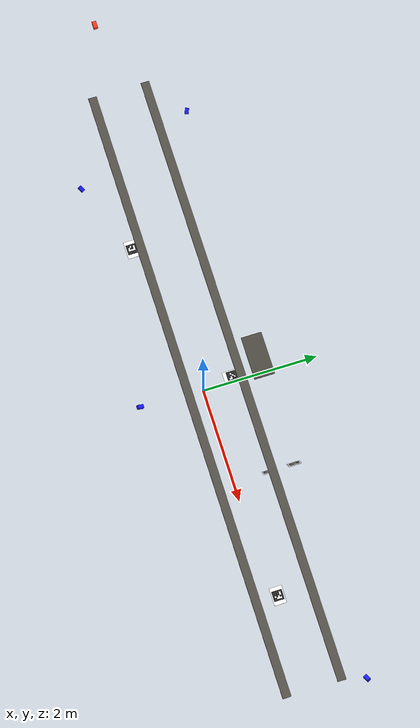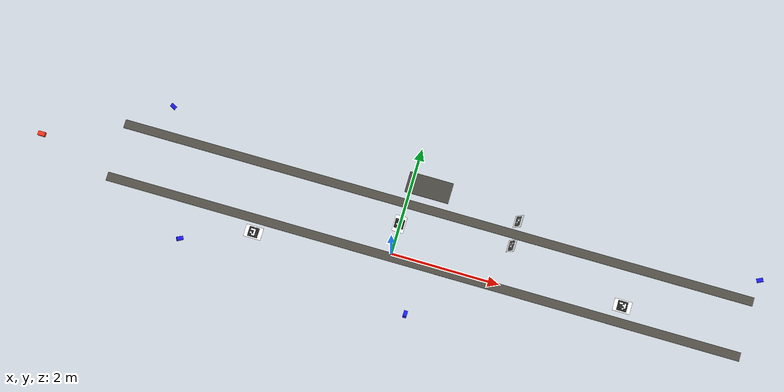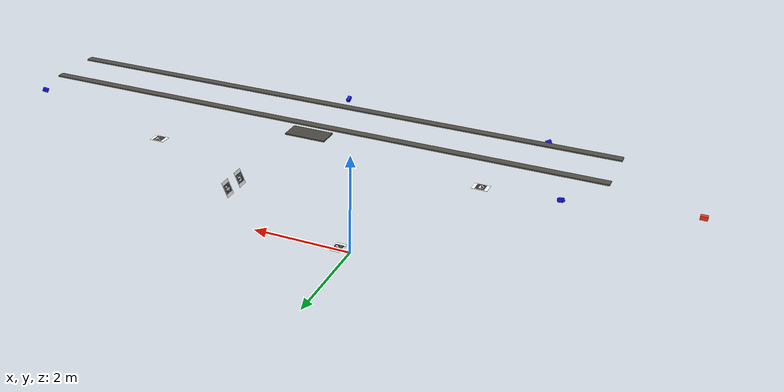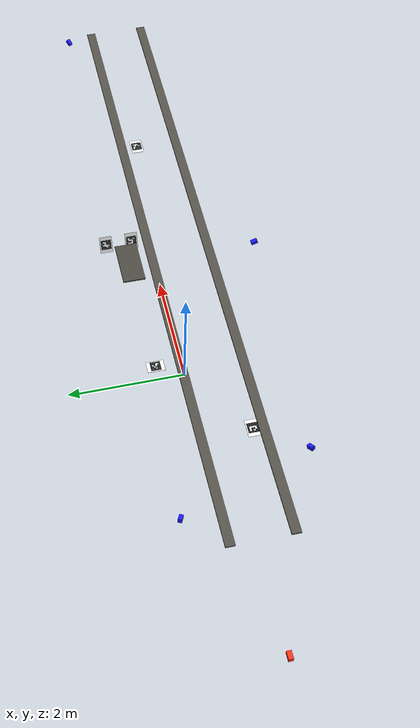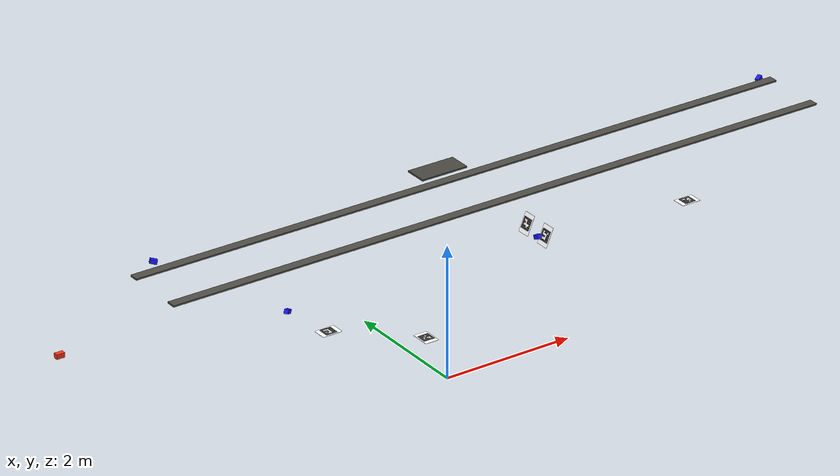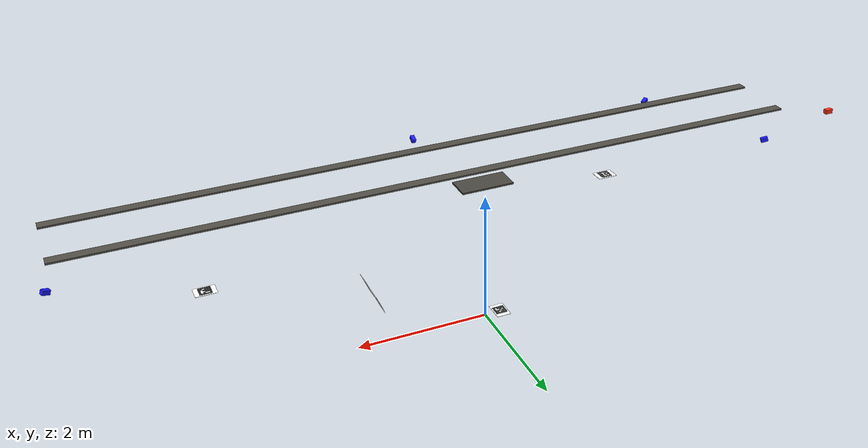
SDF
<sdf version="1.9">
 <world name="bus_real_data_camera_layout">
  <plugin filename="ignition-gazebo-physics-system" name="ignition::gazebo::systems::Physics"/>
  <plugin filename="ignition-gazebo-user-commands-system" name="ignition::gazebo::systems::UserCommands"/>
  <plugin filename="ignition-gazebo-scene-broadcaster-system" name="ignition::gazebo::systems::SceneBroadcaster"/>
  <plugin filename="ignition-gazebo-sensors-system" name="ignition::gazebo::systems::Sensors">
   <render_engine>ogre2</render_engine>
  </plugin>
  <physics name="default_physics" type="ignored">
   <max_step_size>0.01</max_step_size>
   <real_time_factor>1.0</real_time_factor>
  </physics>
  <scene>
   <ambient>0.160000 0.160000 0.170000 1.000000</ambient>
   <background>0.480000 0.520000 0.600000 1.000000</background>
   <shadows>true</shadows>
  </scene>
  <model name="cam_edge_0">
   <static>true</static>
   <pose>0.58780793 -1.23455526 2.48732830 -0.02832886 0.39717862 1.54540010</pose>
   <link name="cam_edge_0_link">
    <visual name="cam_edge_0_visual">
     <geometry><box><size>0.10 0.06 0.06</size></box></geometry>
     <material><ambient>0.1 0.1 1.0 1</ambient><diffuse>0.1 0.1 1.0 1</diffuse></material>
    </visual>
    <sensor name="cam_edge_0_sensor" type="camera">
     <always_on>true</always_on>
     <update_rate>15</update_rate>
     <topic>/bus_real_data/cam_edge_0/image</topic>
     <camera>
      <horizontal_fov>1.2064567910</horizontal_fov>
      <image><width>1280</width><height>720</height><format>R8G8B8</format></image>
      <clip><near>0.05</near><far>100.0</far></clip>
     </camera>
    </sensor>
   </link>
  </model>
  <model name="cam_edge_1">
   <static>true</static>
   <pose>-3.97416732 0.97508650 2.53154268 0.01397153 0.28558128 -0.42471064</pose>
   <link name="cam_edge_1_link">
    <visual name="cam_edge_1_visual">
     <geometry><box><size>0.10 0.06 0.06</size></box></geometry>
     <material><ambient>0.1 0.1 1.0 1</ambient><diffuse>0.1 0.1 1.0 1</diffuse></material>
    </visual>
    <sensor name="cam_edge_1_sensor" type="camera">
     <always_on>true</always_on>
     <update_rate>15</update_rate>
     <topic>/bus_real_data/cam_edge_1/image</topic>
     <camera>
      <horizontal_fov>1.2058954091</horizontal_fov>
      <image><width>1280</width><height>720</height><format>R8G8B8</format></image>
      <clip><near>0.05</near><far>100.0</far></clip>
     </camera>
    </sensor>
   </link>
  </model>
  <model name="cam_edge_3">
   <static>true</static>
   <pose>-3.22735583 -1.06321426 2.45421090 0.03640120 0.33821970 0.53742790</pose>
   <link name="cam_edge_3_link">
    <visual name="cam_edge_3_visual">
     <geometry><box><size>0.10 0.06 0.06</size></box></geometry>
     <material><ambient>0.1 0.1 1.0 1</ambient><diffuse>0.1 0.1 1.0 1</diffuse></material>
    </visual>
    <sensor name="cam_edge_3_sensor" type="camera">
     <always_on>true</always_on>
     <update_rate>15</update_rate>
     <topic>/bus_real_data/cam_edge_3/image</topic>
     <camera>
      <horizontal_fov>1.2156537552</horizontal_fov>
      <image><width>1280</width><height>720</height><format>R8G8B8</format></image>
      <clip><near>0.05</near><far>100.0</far></clip>
     </camera>
    </sensor>
   </link>
  </model>
  <model name="cam_edge_5">
   <static>true</static>
   <pose>5.85885887 0.84841954 2.53876157 0.07529451 0.33545337 -2.70003495</pose>
   <link name="cam_edge_5_link">
    <visual name="cam_edge_5_visual">
     <geometry><box><size>0.10 0.06 0.06</size></box></geometry>
     <material><ambient>0.1 0.1 1.0 1</ambient><diffuse>0.1 0.1 1.0 1</diffuse></material>
    </visual>
    <sensor name="cam_edge_5_sensor" type="camera">
     <always_on>true</always_on>
     <update_rate>15</update_rate>
     <topic>/bus_real_data/cam_edge_5/image</topic>
     <camera>
      <horizontal_fov>1.2083025268</horizontal_fov>
      <image><width>1280</width><height>720</height><format>R8G8B8</format></image>
      <clip><near>0.05</near><far>100.0</far></clip>
     </camera>
    </sensor>
   </link>
  </model>
  <include>
   <uri>model://a4_aruco_marker_001</uri>
   <name>marker_001</name>
   <pose>-2.250000 -0.525000 1.630000 -1.57079633 0.00000000 -1.57079633</pose>
  </include>
  <include>
   <uri>model://a4_aruco_marker_006</uri>
   <name>marker_006</name>
   <pose>1.970000 0.500000 1.370000 -0.40000000 -0.00000000 -1.57079633</pose>
  </include>
  <include>
   <uri>model://a4_aruco_marker_007</uri>
   <name>marker_007</name>
   <pose>1.970000 0.935000 1.370000 -0.40000000 -0.00000000 -1.57079633</pose>
  </include>
  <include>
   <uri>model://a4_aruco_marker_011</uri>
   <name>marker_011</name>
   <pose>4.000000 0.000000 1.530000 -1.57079633 0.00000000 1.57079633</pose>
  </include>
  <include>
   <uri>model://a4_aruco_marker_014</uri>
   <name>aruco_ref_floor_14</name>
   <pose>0.000000 0.500000 0.400000 -1.57079633 0.00000000 0.00000000</pose>
  </include>
  <model name="moving_calib_camera">
   <static>true</static>
   <pose>-6.000000 0.000000 2.200000 0.000000 0.000000 0.000000</pose>
   <link name="moving_calib_camera_link">
    <visual name="moving_calib_camera_visual">
     <geometry><box><size>0.12 0.07 0.07</size></box></geometry>
     <material><ambient>1.0 0.2 0.1 1</ambient><diffuse>1.0 0.2 0.1 1</diffuse></material>
    </visual>
    <sensor name="moving_calib_camera_sensor" type="camera">
     <always_on>true</always_on>
     <update_rate>15</update_rate>
     <topic>/bus_real_data/moving_calib_camera/image</topic>
     <camera>
      <horizontal_fov>1.2060225131</horizontal_fov>
      <image><width>1280</width><height>720</height><format>R8G8B8</format></image>
      <clip><near>0.05</near><far>100.0</far></clip>
     </camera>
    </sensor>
   </link>
  </model>
  <model name="bus_ceiling_led_panels">
   <static>true</static>
   <link name="ceiling_led_panel_link">
    <visual name="ceiling_led_strip_0">
     <pose>0.600000 -0.450000 2.700000 0 0 0</pose>
     <geometry><box><size>10.400000 0.140000 0.025000</size></box></geometry>
     <material>
      <ambient>0.320000 0.310000 0.280000 1.000000</ambient>
      <diffuse>0.320000 0.310000 0.280000 1.000000</diffuse>
      <specular>0.100000 0.100000 0.090000 1.000000</specular>
      <emissive>0.320000 0.310000 0.280000 1.000000</emissive>
     </material>
    </visual>
    <visual name="ceiling_led_strip_1">
     <pose>0.600000 0.450000 2.700000 0 0 0</pose>
     <geometry><box><size>10.400000 0.140000 0.025000</size></box></geometry>
     <material>
      <ambient>0.320000 0.310000 0.280000 1.000000</ambient>
      <diffuse>0.320000 0.310000 0.280000 1.000000</diffuse>
      <specular>0.100000 0.100000 0.090000 1.000000</specular>
      <emissive>0.320000 0.310000 0.280000 1.000000</emissive>
     </material>
    </visual>
    <visual name="door_ceiling_led_panel">
     <pose>0.400000 0.800000 2.700000 0 0 0</pose>
     <geometry><box><size>0.720000 0.340000 0.025000</size></box></geometry>
     <material>
      <ambient>0.288000 0.279000 0.252000 1.000000</ambient>
      <diffuse>0.288000 0.279000 0.252000 1.000000</diffuse>
      <specular>0.100000 0.100000 0.090000 1.000000</specular>
      <emissive>0.288000 0.279000 0.252000 1.000000</emissive>
     </material>
    </visual>
   </link>
  </model>
  <light name="ceiling_strip_point_00" type="point">
   <pose>-4.200000 -0.450000 2.610000 0 0 0</pose>
   <cast_shadows>false</cast_shadows>
   <visualize>false</visualize>
   <diffuse>0.170000 0.165000 0.150000 1.000000</diffuse>
   <specular>0.018000 0.018000 0.016000 1.000000</specular>
   <attenuation>
    <range>4.600000</range>
    <constant>0.880000</constant>
    <linear>0.095000</linear>
    <quadratic>0.022000</quadratic>
   </attenuation>
  </light>
  <light name="ceiling_strip_point_01" type="point">
   <pose>-2.600000 -0.450000 2.610000 0 0 0</pose>
   <cast_shadows>false</cast_shadows>
   <visualize>false</visualize>
   <diffuse>0.170000 0.165000 0.150000 1.000000</diffuse>
   <specular>0.018000 0.018000 0.016000 1.000000</specular>
   <attenuation>
    <range>4.600000</range>
    <constant>0.880000</constant>
    <linear>0.095000</linear>
    <quadratic>0.022000</quadratic>
   </attenuation>
  </light>
  <light name="ceiling_strip_point_02" type="point">
   <pose>-1.000000 -0.450000 2.610000 0 0 0</pose>
   <cast_shadows>false</cast_shadows>
   <visualize>false</visualize>
   <diffuse>0.170000 0.165000 0.150000 1.000000</diffuse>
   <specular>0.018000 0.018000 0.016000 1.000000</specular>
   <attenuation>
    <range>4.600000</range>
    <constant>0.880000</constant>
    <linear>0.095000</linear>
    <quadratic>0.022000</quadratic>
   </attenuation>
  </light>
  <light name="ceiling_strip_point_03" type="point">
   <pose>0.600000 -0.450000 2.610000 0 0 0</pose>
   <cast_shadows>false</cast_shadows>
   <visualize>false</visualize>
   <diffuse>0.170000 0.165000 0.150000 1.000000</diffuse>
   <specular>0.018000 0.018000 0.016000 1.000000</specular>
   <attenuation>
    <range>4.600000</range>
    <constant>0.880000</constant>
    <linear>0.095000</linear>
    <quadratic>0.022000</quadratic>
   </attenuation>
  </light>
  <light name="ceiling_strip_point_04" type="point">
   <pose>2.200000 -0.450000 2.610000 0 0 0</pose>
   <cast_shadows>false</cast_shadows>
   <visualize>false</visualize>
   <diffuse>0.170000 0.165000 0.150000 1.000000</diffuse>
   <specular>0.018000 0.018000 0.016000 1.000000</specular>
   <attenuation>
    <range>4.600000</range>
    <constant>0.880000</constant>
    <linear>0.095000</linear>
    <quadratic>0.022000</quadratic>
   </attenuation>
  </light>
  <light name="ceiling_strip_point_05" type="point">
   <pose>3.800000 -0.450000 2.610000 0 0 0</pose>
   <cast_shadows>false</cast_shadows>
   <visualize>false</visualize>
   <diffuse>0.170000 0.165000 0.150000 1.000000</diffuse>
   <specular>0.018000 0.018000 0.016000 1.000000</specular>
   <attenuation>
    <range>4.600000</range>
    <constant>0.880000</constant>
    <linear>0.095000</linear>
    <quadratic>0.022000</quadratic>
   </attenuation>
  </light>
  <light name="ceiling_strip_point_06" type="point">
   <pose>5.400000 -0.450000 2.610000 0 0 0</pose>
   <cast_shadows>false</cast_shadows>
   <visualize>false</visualize>
   <diffuse>0.170000 0.165000 0.150000 1.000000</diffuse>
   <specular>0.018000 0.018000 0.016000 1.000000</specular>
   <attenuation>
    <range>4.600000</range>
    <constant>0.880000</constant>
    <linear>0.095000</linear>
    <quadratic>0.022000</quadratic>
   </attenuation>
  </light>
  <light name="ceiling_strip_point_07" type="point">
   <pose>-4.200000 0.450000 2.610000 0 0 0</pose>
   <cast_shadows>false</cast_shadows>
   <visualize>false</visualize>
   <diffuse>0.170000 0.165000 0.150000 1.000000</diffuse>
   <specular>0.018000 0.018000 0.016000 1.000000</specular>
   <attenuation>
    <range>4.600000</range>
    <constant>0.880000</constant>
    <linear>0.095000</linear>
    <quadratic>0.022000</quadratic>
   </attenuation>
  </light>
  <light name="ceiling_strip_point_08" type="point">
   <pose>-2.600000 0.450000 2.610000 0 0 0</pose>
   <cast_shadows>false</cast_shadows>
   <visualize>false</visualize>
   <diffuse>0.170000 0.165000 0.150000 1.000000</diffuse>
   <specular>0.018000 0.018000 0.016000 1.000000</specular>
   <attenuation>
    <range>4.600000</range>
    <constant>0.880000</constant>
    <linear>0.095000</linear>
    <quadratic>0.022000</quadratic>
   </attenuation>
  </light>
  <light name="ceiling_strip_point_09" type="point">
   <pose>-1.000000 0.450000 2.610000 0 0 0</pose>
   <cast_shadows>false</cast_shadows>
   <visualize>false</visualize>
   <diffuse>0.170000 0.165000 0.150000 1.000000</diffuse>
   <specular>0.018000 0.018000 0.016000 1.000000</specular>
   <attenuation>
    <range>4.600000</range>
    <constant>0.880000</constant>
    <linear>0.095000</linear>
    <quadratic>0.022000</quadratic>
   </attenuation>
  </light>
  <light name="ceiling_strip_point_10" type="point">
   <pose>0.600000 0.450000 2.610000 0 0 0</pose>
   <cast_shadows>false</cast_shadows>
   <visualize>false</visualize>
   <diffuse>0.170000 0.165000 0.150000 1.000000</diffuse>
   <specular>0.018000 0.018000 0.016000 1.000000</specular>
   <attenuation>
    <range>4.600000</range>
    <constant>0.880000</constant>
    <linear>0.095000</linear>
    <quadratic>0.022000</quadratic>
   </attenuation>
  </light>
  <light name="ceiling_strip_point_11" type="point">
   <pose>2.200000 0.450000 2.610000 0 0 0</pose>
   <cast_shadows>false</cast_shadows>
   <visualize>false</visualize>
   <diffuse>0.170000 0.165000 0.150000 1.000000</diffuse>
   <specular>0.018000 0.018000 0.016000 1.000000</specular>
   <attenuation>
    <range>4.600000</range>
    <constant>0.880000</constant>
    <linear>0.095000</linear>
    <quadratic>0.022000</quadratic>
   </attenuation>
  </light>
  <light name="ceiling_strip_point_12" type="point">
   <pose>3.800000 0.450000 2.610000 0 0 0</pose>
   <cast_shadows>false</cast_shadows>
   <visualize>false</visualize>
   <diffuse>0.170000 0.165000 0.150000 1.000000</diffuse>
   <specular>0.018000 0.018000 0.016000 1.000000</specular>
   <attenuation>
    <range>4.600000</range>
    <constant>0.880000</constant>
    <linear>0.095000</linear>
    <quadratic>0.022000</quadratic>
   </attenuation>
  </light>
  <light name="ceiling_strip_point_13" type="point">
   <pose>5.400000 0.450000 2.610000 0 0 0</pose>
   <cast_shadows>false</cast_shadows>
   <visualize>false</visualize>
   <diffuse>0.170000 0.165000 0.150000 1.000000</diffuse>
   <specular>0.018000 0.018000 0.016000 1.000000</specular>
   <attenuation>
    <range>4.600000</range>
    <constant>0.880000</constant>
    <linear>0.095000</linear>
    <quadratic>0.022000</quadratic>
   </attenuation>
  </light>
  <light name="door_ceiling_point" type="point">
   <pose>0.400000 0.800000 2.580000 0 0 0</pose>
   <cast_shadows>false</cast_shadows>
   <visualize>false</visualize>
   <diffuse>0.122400 0.118800 0.108000 1.000000</diffuse>
   <specular>0.009900 0.009900 0.008800 1.000000</specular>
   <attenuation>
    <range>3.200000</range>
    <constant>0.780000</constant>
    <linear>0.105000</linear>
    <quadratic>0.027000</quadratic>
   </attenuation>
  </light>
 </world>
</sdf>

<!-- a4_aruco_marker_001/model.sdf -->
<sdf version="1.9">
  <model name="a4_aruco_marker_001">
    <static>true</static>
    <link name="board_link">

      <visual name="a4_white_sheet">
        <pose>0 0 0 0 0 0</pose>
        <geometry>
          <box>
            <size>0.210000 0.004 0.297000</size>
          </box>
        </geometry>
        <material>
          <ambient>1 1 1 1</ambient>
          <diffuse>1 1 1 1</diffuse>
        </material>
      </visual>

        <visual name="black_cell_0_0">
          <pose>-0.070833 -0.004000 0.070833 0 0 0</pose>
          <geometry>
            <box>
              <size>0.027767 0.003 0.027767</size>
            </box>
          </geometry>
          <material>
            <ambient>0 0 0 1</ambient>
            <diffuse>0 0 0 1</diffuse>
          </material>
        </visual>

        <visual name="black_cell_0_1">
          <pose>-0.042500 -0.004000 0.070833 0 0 0</pose>
          <geometry>
            <box>
              <size>0.027767 0.003 0.027767</size>
            </box>
          </geometry>
          <material>
            <ambient>0 0 0 1</ambient>
            <diffuse>0 0 0 1</diffuse>
          </material>
        </visual>

        <visual name="black_cell_0_2">
          <pose>-0.014167 -0.004000 0.070833 0 0 0</pose>
          <geometry>
            <box>
              <size>0.027767 0.003 0.027767</size>
            </box>
          </geometry>
          <material>
            <ambient>0 0 0 1</ambient>
            <diffuse>0 0 0 1</diffuse>
          </material>
        </visual>

        <visual name="black_cell_0_3">
          <pose>0.014167 -0.004000 0.070833 0 0 0</pose>
          <geometry>
            <box>
              <size>0.027767 0.003 0.027767</size>
            </box>
          </geometry>
          <material>
            <ambient>0 0 0 1</ambient>
            <diffuse>0 0 0 1</diffuse>
          </material>
        </visual>

        <visual name="black_cell_0_4">
          <pose>0.042500 -0.004000 0.070833 0 0 0</pose>
          <geometry>
            <box>
              <size>0.027767 0.003 0.027767</size>
            </box>
          </geometry>
          <material>
            <ambient>0 0 0 1</ambient>
            <diffuse>0 0 0 1</diffuse>
          </material>
        </visual>

        <visual name="black_cell_0_5">
          <pose>0.070833 -0.004000 0.070833 0 0 0</pose>
          <geometry>
            <box>
              <size>0.027767 0.003 0.027767</size>
            </box>
          </geometry>
          <material>
            <ambient>0 0 0 1</ambient>
            <diffuse>0 0 0 1</diffuse>
          </material>
        </visual>

        <visual name="black_cell_1_0">
          <pose>-0.070833 -0.004000 0.042500 0 0 0</pose>
          <geometry>
            <box>
              <size>0.027767 0.003 0.027767</size>
            </box>
          </geometry>
          <material>
            <ambient>0 0 0 1</ambient>
            <diffuse>0 0 0 1</diffuse>
          </material>
        </visual>

        <visual name="black_cell_1_1">
          <pose>-0.042500 -0.004000 0.042500 0 0 0</pose>
          <geometry>
            <box>
              <size>0.027767 0.003 0.027767</size>
            </box>
          </geometry>
          <material>
            <ambient>0 0 0 1</ambient>
            <diffuse>0 0 0 1</diffuse>
          </material>
        </visual>

        <visual name="black_cell_1_2">
          <pose>-0.014167 -0.004000 0.042500 0 0 0</pose>
          <geometry>
            <box>
              <size>0.027767 0.003 0.027767</size>
            </box>
          </geometry>
          <material>
            <ambient>0 0 0 1</ambient>
            <diffuse>0 0 0 1</diffuse>
          </material>
        </visual>

        <visual name="black_cell_1_3">
          <pose>0.014167 -0.004000 0.042500 0 0 0</pose>
          <geometry>
            <box>
              <size>0.027767 0.003 0.027767</size>
            </box>
          </geometry>
          <material>
            <ambient>0 0 0 1</ambient>
            <diffuse>0 0 0 1</diffuse>
          </material>
        </visual>

        <visual name="black_cell_1_4">
          <pose>0.042500 -0.004000 0.042500 0 0 0</pose>
          <geometry>
            <box>
              <size>0.027767 0.003 0.027767</size>
            </box>
          </geometry>
          <material>
            <ambient>0 0 0 1</ambient>
            <diffuse>0 0 0 1</diffuse>
          </material>
        </visual>

        <visual name="black_cell_1_5">
          <pose>0.070833 -0.004000 0.042500 0 0 0</pose>
          <geometry>
            <box>
              <size>0.027767 0.003 0.027767</size>
            </box>
          </geometry>
          <material>
            <ambient>0 0 0 1</ambient>
            <diffuse>0 0 0 1</diffuse>
          </material>
        </visual>

        <visual name="black_cell_2_0">
          <pose>-0.070833 -0.004000 0.014167 0 0 0</pose>
          <geometry>
            <box>
              <size>0.027767 0.003 0.027767</size>
            </box>
          </geometry>
          <material>
            <ambient>0 0 0 1</ambient>
            <diffuse>0 0 0 1</diffuse>
          </material>
        </visual>

        <visual name="black_cell_2_5">
          <pose>0.070833 -0.004000 0.014167 0 0 0</pose>
          <geometry>
            <box>
              <size>0.027767 0.003 0.027767</size>
            </box>
          </geometry>
          <material>
            <ambient>0 0 0 1</ambient>
            <diffuse>0 0 0 1</diffuse>
          </material>
        </visual>

        <visual name="black_cell_3_0">
          <pose>-0.070833 -0.004000 -0.014167 0 0 0</pose>
          <geometry>
            <box>
              <size>0.027767 0.003 0.027767</size>
            </box>
          </geometry>
          <material>
            <ambient>0 0 0 1</ambient>
            <diffuse>0 0 0 1</diffuse>
          </material>
        </visual>

        <visual name="black_cell_3_2">
          <pose>-0.014167 -0.004000 -0.014167 0 0 0</pose>
          <geometry>
            <box>
              <size>0.027767 0.003 0.027767</size>
            </box>
          </geometry>
          <material>
            <ambient>0 0 0 1</ambient>
            <diffuse>0 0 0 1</diffuse>
          </material>
        </visual>

        <visual name="black_cell_3_3">
          <pose>0.014167 -0.004000 -0.014167 0 0 0</pose>
          <geometry>
            <box>
              <size>0.027767 0.003 0.027767</size>
            </box>
          </geometry>
          <material>
            <ambient>0 0 0 1</ambient>
            <diffuse>0 0 0 1</diffuse>
          </material>
        </visual>

        <visual name="black_cell_3_5">
          <pose>0.070833 -0.004000 -0.014167 0 0 0</pose>
          <geometry>
            <box>
              <size>0.027767 0.003 0.027767</size>
            </box>
          </geometry>
          <material>
            <ambient>0 0 0 1</ambient>
            <diffuse>0 0 0 1</diffuse>
          </material>
        </visual>

        <visual name="black_cell_4_0">
          <pose>-0.070833 -0.004000 -0.042500 0 0 0</pose>
          <geometry>
            <box>
              <size>0.027767 0.003 0.027767</size>
            </box>
          </geometry>
          <material>
            <ambient>0 0 0 1</ambient>
            <diffuse>0 0 0 1</diffuse>
          </material>
        </visual>

        <visual name="black_cell_4_2">
          <pose>-0.014167 -0.004000 -0.042500 0 0 0</pose>
          <geometry>
            <box>
              <size>0.027767 0.003 0.027767</size>
            </box>
          </geometry>
          <material>
            <ambient>0 0 0 1</ambient>
            <diffuse>0 0 0 1</diffuse>
          </material>
        </visual>

        <visual name="black_cell_4_4">
          <pose>0.042500 -0.004000 -0.042500 0 0 0</pose>
          <geometry>
            <box>
              <size>0.027767 0.003 0.027767</size>
            </box>
          </geometry>
          <material>
            <ambient>0 0 0 1</ambient>
            <diffuse>0 0 0 1</diffuse>
          </material>
        </visual>

        <visual name="black_cell_4_5">
          <pose>0.070833 -0.004000 -0.042500 0 0 0</pose>
          <geometry>
            <box>
              <size>0.027767 0.003 0.027767</size>
            </box>
          </geometry>
          <material>
            <ambient>0 0 0 1</ambient>
            <diffuse>0 0 0 1</diffuse>
          </material>
        </visual>

        <visual name="black_cell_5_0">
          <pose>-0.070833 -0.004000 -0.070833 0 0 0</pose>
          <geometry>
            <box>
              <size>0.027767 0.003 0.027767</size>
            </box>
          </geometry>
          <material>
            <ambient>0 0 0 1</ambient>
            <diffuse>0 0 0 1</diffuse>
          </material>
        </visual>

        <visual name="black_cell_5_1">
          <pose>-0.042500 -0.004000 -0.070833 0 0 0</pose>
          <geometry>
            <box>
              <size>0.027767 0.003 0.027767</size>
            </box>
          </geometry>
          <material>
            <ambient>0 0 0 1</ambient>
            <diffuse>0 0 0 1</diffuse>
          </material>
        </visual>

        <visual name="black_cell_5_2">
          <pose>-0.014167 -0.004000 -0.070833 0 0 0</pose>
          <geometry>
            <box>
              <size>0.027767 0.003 0.027767</size>
            </box>
          </geometry>
          <material>
            <ambient>0 0 0 1</ambient>
            <diffuse>0 0 0 1</diffuse>
          </material>
        </visual>

        <visual name="black_cell_5_3">
          <pose>0.014167 -0.004000 -0.070833 0 0 0</pose>
          <geometry>
            <box>
              <size>0.027767 0.003 0.027767</size>
            </box>
          </geometry>
          <material>
            <ambient>0 0 0 1</ambient>
            <diffuse>0 0 0 1</diffuse>
          </material>
        </visual>

        <visual name="black_cell_5_4">
          <pose>0.042500 -0.004000 -0.070833 0 0 0</pose>
          <geometry>
            <box>
              <size>0.027767 0.003 0.027767</size>
            </box>
          </geometry>
          <material>
            <ambient>0 0 0 1</ambient>
            <diffuse>0 0 0 1</diffuse>
          </material>
        </visual>

        <visual name="black_cell_5_5">
          <pose>0.070833 -0.004000 -0.070833 0 0 0</pose>
          <geometry>
            <box>
              <size>0.027767 0.003 0.027767</size>
            </box>
          </geometry>
          <material>
            <ambient>0 0 0 1</ambient>
            <diffuse>0 0 0 1</diffuse>
          </material>
        </visual>

    </link>
  </model>
</sdf>

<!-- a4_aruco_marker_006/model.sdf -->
<sdf version="1.9">
  <model name="a4_aruco_marker_006">
    <static>true</static>
    <link name="board_link">

      <visual name="a4_white_sheet">
        <pose>0 0 0 0 0 0</pose>
        <geometry>
          <box>
            <size>0.210000 0.004 0.297000</size>
          </box>
        </geometry>
        <material>
          <ambient>1 1 1 1</ambient>
          <diffuse>1 1 1 1</diffuse>
        </material>
      </visual>

        <visual name="black_cell_0_0">
          <pose>-0.070833 -0.004000 0.070833 0 0 0</pose>
          <geometry>
            <box>
              <size>0.027767 0.003 0.027767</size>
            </box>
          </geometry>
          <material>
            <ambient>0 0 0 1</ambient>
            <diffuse>0 0 0 1</diffuse>
          </material>
        </visual>

        <visual name="black_cell_0_1">
          <pose>-0.042500 -0.004000 0.070833 0 0 0</pose>
          <geometry>
            <box>
              <size>0.027767 0.003 0.027767</size>
            </box>
          </geometry>
          <material>
            <ambient>0 0 0 1</ambient>
            <diffuse>0 0 0 1</diffuse>
          </material>
        </visual>

        <visual name="black_cell_0_2">
          <pose>-0.014167 -0.004000 0.070833 0 0 0</pose>
          <geometry>
            <box>
              <size>0.027767 0.003 0.027767</size>
            </box>
          </geometry>
          <material>
            <ambient>0 0 0 1</ambient>
            <diffuse>0 0 0 1</diffuse>
          </material>
        </visual>

        <visual name="black_cell_0_3">
          <pose>0.014167 -0.004000 0.070833 0 0 0</pose>
          <geometry>
            <box>
              <size>0.027767 0.003 0.027767</size>
            </box>
          </geometry>
          <material>
            <ambient>0 0 0 1</ambient>
            <diffuse>0 0 0 1</diffuse>
          </material>
        </visual>

        <visual name="black_cell_0_4">
          <pose>0.042500 -0.004000 0.070833 0 0 0</pose>
          <geometry>
            <box>
              <size>0.027767 0.003 0.027767</size>
            </box>
          </geometry>
          <material>
            <ambient>0 0 0 1</ambient>
            <diffuse>0 0 0 1</diffuse>
          </material>
        </visual>

        <visual name="black_cell_0_5">
          <pose>0.070833 -0.004000 0.070833 0 0 0</pose>
          <geometry>
            <box>
              <size>0.027767 0.003 0.027767</size>
            </box>
          </geometry>
          <material>
            <ambient>0 0 0 1</ambient>
            <diffuse>0 0 0 1</diffuse>
          </material>
        </visual>

        <visual name="black_cell_1_0">
          <pose>-0.070833 -0.004000 0.042500 0 0 0</pose>
          <geometry>
            <box>
              <size>0.027767 0.003 0.027767</size>
            </box>
          </geometry>
          <material>
            <ambient>0 0 0 1</ambient>
            <diffuse>0 0 0 1</diffuse>
          </material>
        </visual>

        <visual name="black_cell_1_2">
          <pose>-0.014167 -0.004000 0.042500 0 0 0</pose>
          <geometry>
            <box>
              <size>0.027767 0.003 0.027767</size>
            </box>
          </geometry>
          <material>
            <ambient>0 0 0 1</ambient>
            <diffuse>0 0 0 1</diffuse>
          </material>
        </visual>

        <visual name="black_cell_1_3">
          <pose>0.014167 -0.004000 0.042500 0 0 0</pose>
          <geometry>
            <box>
              <size>0.027767 0.003 0.027767</size>
            </box>
          </geometry>
          <material>
            <ambient>0 0 0 1</ambient>
            <diffuse>0 0 0 1</diffuse>
          </material>
        </visual>

        <visual name="black_cell_1_5">
          <pose>0.070833 -0.004000 0.042500 0 0 0</pose>
          <geometry>
            <box>
              <size>0.027767 0.003 0.027767</size>
            </box>
          </geometry>
          <material>
            <ambient>0 0 0 1</ambient>
            <diffuse>0 0 0 1</diffuse>
          </material>
        </visual>

        <visual name="black_cell_2_0">
          <pose>-0.070833 -0.004000 0.014167 0 0 0</pose>
          <geometry>
            <box>
              <size>0.027767 0.003 0.027767</size>
            </box>
          </geometry>
          <material>
            <ambient>0 0 0 1</ambient>
            <diffuse>0 0 0 1</diffuse>
          </material>
        </visual>

        <visual name="black_cell_2_4">
          <pose>0.042500 -0.004000 0.014167 0 0 0</pose>
          <geometry>
            <box>
              <size>0.027767 0.003 0.027767</size>
            </box>
          </geometry>
          <material>
            <ambient>0 0 0 1</ambient>
            <diffuse>0 0 0 1</diffuse>
          </material>
        </visual>

        <visual name="black_cell_2_5">
          <pose>0.070833 -0.004000 0.014167 0 0 0</pose>
          <geometry>
            <box>
              <size>0.027767 0.003 0.027767</size>
            </box>
          </geometry>
          <material>
            <ambient>0 0 0 1</ambient>
            <diffuse>0 0 0 1</diffuse>
          </material>
        </visual>

        <visual name="black_cell_3_0">
          <pose>-0.070833 -0.004000 -0.014167 0 0 0</pose>
          <geometry>
            <box>
              <size>0.027767 0.003 0.027767</size>
            </box>
          </geometry>
          <material>
            <ambient>0 0 0 1</ambient>
            <diffuse>0 0 0 1</diffuse>
          </material>
        </visual>

        <visual name="black_cell_3_1">
          <pose>-0.042500 -0.004000 -0.014167 0 0 0</pose>
          <geometry>
            <box>
              <size>0.027767 0.003 0.027767</size>
            </box>
          </geometry>
          <material>
            <ambient>0 0 0 1</ambient>
            <diffuse>0 0 0 1</diffuse>
          </material>
        </visual>

        <visual name="black_cell_3_2">
          <pose>-0.014167 -0.004000 -0.014167 0 0 0</pose>
          <geometry>
            <box>
              <size>0.027767 0.003 0.027767</size>
            </box>
          </geometry>
          <material>
            <ambient>0 0 0 1</ambient>
            <diffuse>0 0 0 1</diffuse>
          </material>
        </visual>

        <visual name="black_cell_3_4">
          <pose>0.042500 -0.004000 -0.014167 0 0 0</pose>
          <geometry>
            <box>
              <size>0.027767 0.003 0.027767</size>
            </box>
          </geometry>
          <material>
            <ambient>0 0 0 1</ambient>
            <diffuse>0 0 0 1</diffuse>
          </material>
        </visual>

        <visual name="black_cell_3_5">
          <pose>0.070833 -0.004000 -0.014167 0 0 0</pose>
          <geometry>
            <box>
              <size>0.027767 0.003 0.027767</size>
            </box>
          </geometry>
          <material>
            <ambient>0 0 0 1</ambient>
            <diffuse>0 0 0 1</diffuse>
          </material>
        </visual>

        <visual name="black_cell_4_0">
          <pose>-0.070833 -0.004000 -0.042500 0 0 0</pose>
          <geometry>
            <box>
              <size>0.027767 0.003 0.027767</size>
            </box>
          </geometry>
          <material>
            <ambient>0 0 0 1</ambient>
            <diffuse>0 0 0 1</diffuse>
          </material>
        </visual>

        <visual name="black_cell_4_4">
          <pose>0.042500 -0.004000 -0.042500 0 0 0</pose>
          <geometry>
            <box>
              <size>0.027767 0.003 0.027767</size>
            </box>
          </geometry>
          <material>
            <ambient>0 0 0 1</ambient>
            <diffuse>0 0 0 1</diffuse>
          </material>
        </visual>

        <visual name="black_cell_4_5">
          <pose>0.070833 -0.004000 -0.042500 0 0 0</pose>
          <geometry>
            <box>
              <size>0.027767 0.003 0.027767</size>
            </box>
          </geometry>
          <material>
            <ambient>0 0 0 1</ambient>
            <diffuse>0 0 0 1</diffuse>
          </material>
        </visual>

        <visual name="black_cell_5_0">
          <pose>-0.070833 -0.004000 -0.070833 0 0 0</pose>
          <geometry>
            <box>
              <size>0.027767 0.003 0.027767</size>
            </box>
          </geometry>
          <material>
            <ambient>0 0 0 1</ambient>
            <diffuse>0 0 0 1</diffuse>
          </material>
        </visual>

        <visual name="black_cell_5_1">
          <pose>-0.042500 -0.004000 -0.070833 0 0 0</pose>
          <geometry>
            <box>
              <size>0.027767 0.003 0.027767</size>
            </box>
          </geometry>
          <material>
            <ambient>0 0 0 1</ambient>
            <diffuse>0 0 0 1</diffuse>
          </material>
        </visual>

        <visual name="black_cell_5_2">
          <pose>-0.014167 -0.004000 -0.070833 0 0 0</pose>
          <geometry>
            <box>
              <size>0.027767 0.003 0.027767</size>
            </box>
          </geometry>
          <material>
            <ambient>0 0 0 1</ambient>
            <diffuse>0 0 0 1</diffuse>
          </material>
        </visual>

        <visual name="black_cell_5_3">
          <pose>0.014167 -0.004000 -0.070833 0 0 0</pose>
          <geometry>
            <box>
              <size>0.027767 0.003 0.027767</size>
            </box>
          </geometry>
          <material>
            <ambient>0 0 0 1</ambient>
            <diffuse>0 0 0 1</diffuse>
          </material>
        </visual>

        <visual name="black_cell_5_4">
          <pose>0.042500 -0.004000 -0.070833 0 0 0</pose>
          <geometry>
            <box>
              <size>0.027767 0.003 0.027767</size>
            </box>
          </geometry>
          <material>
            <ambient>0 0 0 1</ambient>
            <diffuse>0 0 0 1</diffuse>
          </material>
        </visual>

        <visual name="black_cell_5_5">
          <pose>0.070833 -0.004000 -0.070833 0 0 0</pose>
          <geometry>
            <box>
              <size>0.027767 0.003 0.027767</size>
            </box>
          </geometry>
          <material>
            <ambient>0 0 0 1</ambient>
            <diffuse>0 0 0 1</diffuse>
          </material>
        </visual>

    </link>
  </model>
</sdf>

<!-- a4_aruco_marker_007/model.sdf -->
<sdf version="1.9">
  <model name="a4_aruco_marker_007">
    <static>true</static>
    <link name="board_link">

      <visual name="a4_white_sheet">
        <pose>0 0 0 0 0 0</pose>
        <geometry>
          <box>
            <size>0.210000 0.004 0.297000</size>
          </box>
        </geometry>
        <material>
          <ambient>1 1 1 1</ambient>
          <diffuse>1 1 1 1</diffuse>
        </material>
      </visual>

        <visual name="black_cell_0_0">
          <pose>-0.070833 -0.004000 0.070833 0 0 0</pose>
          <geometry>
            <box>
              <size>0.027767 0.003 0.027767</size>
            </box>
          </geometry>
          <material>
            <ambient>0 0 0 1</ambient>
            <diffuse>0 0 0 1</diffuse>
          </material>
        </visual>

        <visual name="black_cell_0_1">
          <pose>-0.042500 -0.004000 0.070833 0 0 0</pose>
          <geometry>
            <box>
              <size>0.027767 0.003 0.027767</size>
            </box>
          </geometry>
          <material>
            <ambient>0 0 0 1</ambient>
            <diffuse>0 0 0 1</diffuse>
          </material>
        </visual>

        <visual name="black_cell_0_2">
          <pose>-0.014167 -0.004000 0.070833 0 0 0</pose>
          <geometry>
            <box>
              <size>0.027767 0.003 0.027767</size>
            </box>
          </geometry>
          <material>
            <ambient>0 0 0 1</ambient>
            <diffuse>0 0 0 1</diffuse>
          </material>
        </visual>

        <visual name="black_cell_0_3">
          <pose>0.014167 -0.004000 0.070833 0 0 0</pose>
          <geometry>
            <box>
              <size>0.027767 0.003 0.027767</size>
            </box>
          </geometry>
          <material>
            <ambient>0 0 0 1</ambient>
            <diffuse>0 0 0 1</diffuse>
          </material>
        </visual>

        <visual name="black_cell_0_4">
          <pose>0.042500 -0.004000 0.070833 0 0 0</pose>
          <geometry>
            <box>
              <size>0.027767 0.003 0.027767</size>
            </box>
          </geometry>
          <material>
            <ambient>0 0 0 1</ambient>
            <diffuse>0 0 0 1</diffuse>
          </material>
        </visual>

        <visual name="black_cell_0_5">
          <pose>0.070833 -0.004000 0.070833 0 0 0</pose>
          <geometry>
            <box>
              <size>0.027767 0.003 0.027767</size>
            </box>
          </geometry>
          <material>
            <ambient>0 0 0 1</ambient>
            <diffuse>0 0 0 1</diffuse>
          </material>
        </visual>

        <visual name="black_cell_1_0">
          <pose>-0.070833 -0.004000 0.042500 0 0 0</pose>
          <geometry>
            <box>
              <size>0.027767 0.003 0.027767</size>
            </box>
          </geometry>
          <material>
            <ambient>0 0 0 1</ambient>
            <diffuse>0 0 0 1</diffuse>
          </material>
        </visual>

        <visual name="black_cell_1_3">
          <pose>0.014167 -0.004000 0.042500 0 0 0</pose>
          <geometry>
            <box>
              <size>0.027767 0.003 0.027767</size>
            </box>
          </geometry>
          <material>
            <ambient>0 0 0 1</ambient>
            <diffuse>0 0 0 1</diffuse>
          </material>
        </visual>

        <visual name="black_cell_1_4">
          <pose>0.042500 -0.004000 0.042500 0 0 0</pose>
          <geometry>
            <box>
              <size>0.027767 0.003 0.027767</size>
            </box>
          </geometry>
          <material>
            <ambient>0 0 0 1</ambient>
            <diffuse>0 0 0 1</diffuse>
          </material>
        </visual>

        <visual name="black_cell_1_5">
          <pose>0.070833 -0.004000 0.042500 0 0 0</pose>
          <geometry>
            <box>
              <size>0.027767 0.003 0.027767</size>
            </box>
          </geometry>
          <material>
            <ambient>0 0 0 1</ambient>
            <diffuse>0 0 0 1</diffuse>
          </material>
        </visual>

        <visual name="black_cell_2_0">
          <pose>-0.070833 -0.004000 0.014167 0 0 0</pose>
          <geometry>
            <box>
              <size>0.027767 0.003 0.027767</size>
            </box>
          </geometry>
          <material>
            <ambient>0 0 0 1</ambient>
            <diffuse>0 0 0 1</diffuse>
          </material>
        </visual>

        <visual name="black_cell_2_1">
          <pose>-0.042500 -0.004000 0.014167 0 0 0</pose>
          <geometry>
            <box>
              <size>0.027767 0.003 0.027767</size>
            </box>
          </geometry>
          <material>
            <ambient>0 0 0 1</ambient>
            <diffuse>0 0 0 1</diffuse>
          </material>
        </visual>

        <visual name="black_cell_2_3">
          <pose>0.014167 -0.004000 0.014167 0 0 0</pose>
          <geometry>
            <box>
              <size>0.027767 0.003 0.027767</size>
            </box>
          </geometry>
          <material>
            <ambient>0 0 0 1</ambient>
            <diffuse>0 0 0 1</diffuse>
          </material>
        </visual>

        <visual name="black_cell_2_4">
          <pose>0.042500 -0.004000 0.014167 0 0 0</pose>
          <geometry>
            <box>
              <size>0.027767 0.003 0.027767</size>
            </box>
          </geometry>
          <material>
            <ambient>0 0 0 1</ambient>
            <diffuse>0 0 0 1</diffuse>
          </material>
        </visual>

        <visual name="black_cell_2_5">
          <pose>0.070833 -0.004000 0.014167 0 0 0</pose>
          <geometry>
            <box>
              <size>0.027767 0.003 0.027767</size>
            </box>
          </geometry>
          <material>
            <ambient>0 0 0 1</ambient>
            <diffuse>0 0 0 1</diffuse>
          </material>
        </visual>

        <visual name="black_cell_3_0">
          <pose>-0.070833 -0.004000 -0.014167 0 0 0</pose>
          <geometry>
            <box>
              <size>0.027767 0.003 0.027767</size>
            </box>
          </geometry>
          <material>
            <ambient>0 0 0 1</ambient>
            <diffuse>0 0 0 1</diffuse>
          </material>
        </visual>

        <visual name="black_cell_3_5">
          <pose>0.070833 -0.004000 -0.014167 0 0 0</pose>
          <geometry>
            <box>
              <size>0.027767 0.003 0.027767</size>
            </box>
          </geometry>
          <material>
            <ambient>0 0 0 1</ambient>
            <diffuse>0 0 0 1</diffuse>
          </material>
        </visual>

        <visual name="black_cell_4_0">
          <pose>-0.070833 -0.004000 -0.042500 0 0 0</pose>
          <geometry>
            <box>
              <size>0.027767 0.003 0.027767</size>
            </box>
          </geometry>
          <material>
            <ambient>0 0 0 1</ambient>
            <diffuse>0 0 0 1</diffuse>
          </material>
        </visual>

        <visual name="black_cell_4_1">
          <pose>-0.042500 -0.004000 -0.042500 0 0 0</pose>
          <geometry>
            <box>
              <size>0.027767 0.003 0.027767</size>
            </box>
          </geometry>
          <material>
            <ambient>0 0 0 1</ambient>
            <diffuse>0 0 0 1</diffuse>
          </material>
        </visual>

        <visual name="black_cell_4_2">
          <pose>-0.014167 -0.004000 -0.042500 0 0 0</pose>
          <geometry>
            <box>
              <size>0.027767 0.003 0.027767</size>
            </box>
          </geometry>
          <material>
            <ambient>0 0 0 1</ambient>
            <diffuse>0 0 0 1</diffuse>
          </material>
        </visual>

        <visual name="black_cell_4_4">
          <pose>0.042500 -0.004000 -0.042500 0 0 0</pose>
          <geometry>
            <box>
              <size>0.027767 0.003 0.027767</size>
            </box>
          </geometry>
          <material>
            <ambient>0 0 0 1</ambient>
            <diffuse>0 0 0 1</diffuse>
          </material>
        </visual>

        <visual name="black_cell_4_5">
          <pose>0.070833 -0.004000 -0.042500 0 0 0</pose>
          <geometry>
            <box>
              <size>0.027767 0.003 0.027767</size>
            </box>
          </geometry>
          <material>
            <ambient>0 0 0 1</ambient>
            <diffuse>0 0 0 1</diffuse>
          </material>
        </visual>

        <visual name="black_cell_5_0">
          <pose>-0.070833 -0.004000 -0.070833 0 0 0</pose>
          <geometry>
            <box>
              <size>0.027767 0.003 0.027767</size>
            </box>
          </geometry>
          <material>
            <ambient>0 0 0 1</ambient>
            <diffuse>0 0 0 1</diffuse>
          </material>
        </visual>

        <visual name="black_cell_5_1">
          <pose>-0.042500 -0.004000 -0.070833 0 0 0</pose>
          <geometry>
            <box>
              <size>0.027767 0.003 0.027767</size>
            </box>
          </geometry>
          <material>
            <ambient>0 0 0 1</ambient>
            <diffuse>0 0 0 1</diffuse>
          </material>
        </visual>

        <visual name="black_cell_5_2">
          <pose>-0.014167 -0.004000 -0.070833 0 0 0</pose>
          <geometry>
            <box>
              <size>0.027767 0.003 0.027767</size>
            </box>
          </geometry>
          <material>
            <ambient>0 0 0 1</ambient>
            <diffuse>0 0 0 1</diffuse>
          </material>
        </visual>

        <visual name="black_cell_5_3">
          <pose>0.014167 -0.004000 -0.070833 0 0 0</pose>
          <geometry>
            <box>
              <size>0.027767 0.003 0.027767</size>
            </box>
          </geometry>
          <material>
            <ambient>0 0 0 1</ambient>
            <diffuse>0 0 0 1</diffuse>
          </material>
        </visual>

        <visual name="black_cell_5_4">
          <pose>0.042500 -0.004000 -0.070833 0 0 0</pose>
          <geometry>
            <box>
              <size>0.027767 0.003 0.027767</size>
            </box>
          </geometry>
          <material>
            <ambient>0 0 0 1</ambient>
            <diffuse>0 0 0 1</diffuse>
          </material>
        </visual>

        <visual name="black_cell_5_5">
          <pose>0.070833 -0.004000 -0.070833 0 0 0</pose>
          <geometry>
            <box>
              <size>0.027767 0.003 0.027767</size>
            </box>
          </geometry>
          <material>
            <ambient>0 0 0 1</ambient>
            <diffuse>0 0 0 1</diffuse>
          </material>
        </visual>

    </link>
  </model>
</sdf>

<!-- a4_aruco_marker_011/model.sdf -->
<sdf version="1.9">
  <model name="a4_aruco_marker_011">
    <static>true</static>
    <link name="board_link">

      <visual name="a4_white_sheet">
        <pose>0 0 0 0 0 0</pose>
        <geometry>
          <box>
            <size>0.210000 0.004 0.297000</size>
          </box>
        </geometry>
        <material>
          <ambient>1 1 1 1</ambient>
          <diffuse>1 1 1 1</diffuse>
        </material>
      </visual>

        <visual name="black_cell_0_0">
          <pose>-0.070833 -0.004000 0.070833 0 0 0</pose>
          <geometry>
            <box>
              <size>0.027767 0.003 0.027767</size>
            </box>
          </geometry>
          <material>
            <ambient>0 0 0 1</ambient>
            <diffuse>0 0 0 1</diffuse>
          </material>
        </visual>

        <visual name="black_cell_0_1">
          <pose>-0.042500 -0.004000 0.070833 0 0 0</pose>
          <geometry>
            <box>
              <size>0.027767 0.003 0.027767</size>
            </box>
          </geometry>
          <material>
            <ambient>0 0 0 1</ambient>
            <diffuse>0 0 0 1</diffuse>
          </material>
        </visual>

        <visual name="black_cell_0_2">
          <pose>-0.014167 -0.004000 0.070833 0 0 0</pose>
          <geometry>
            <box>
              <size>0.027767 0.003 0.027767</size>
            </box>
          </geometry>
          <material>
            <ambient>0 0 0 1</ambient>
            <diffuse>0 0 0 1</diffuse>
          </material>
        </visual>

        <visual name="black_cell_0_3">
          <pose>0.014167 -0.004000 0.070833 0 0 0</pose>
          <geometry>
            <box>
              <size>0.027767 0.003 0.027767</size>
            </box>
          </geometry>
          <material>
            <ambient>0 0 0 1</ambient>
            <diffuse>0 0 0 1</diffuse>
          </material>
        </visual>

        <visual name="black_cell_0_4">
          <pose>0.042500 -0.004000 0.070833 0 0 0</pose>
          <geometry>
            <box>
              <size>0.027767 0.003 0.027767</size>
            </box>
          </geometry>
          <material>
            <ambient>0 0 0 1</ambient>
            <diffuse>0 0 0 1</diffuse>
          </material>
        </visual>

        <visual name="black_cell_0_5">
          <pose>0.070833 -0.004000 0.070833 0 0 0</pose>
          <geometry>
            <box>
              <size>0.027767 0.003 0.027767</size>
            </box>
          </geometry>
          <material>
            <ambient>0 0 0 1</ambient>
            <diffuse>0 0 0 1</diffuse>
          </material>
        </visual>

        <visual name="black_cell_1_0">
          <pose>-0.070833 -0.004000 0.042500 0 0 0</pose>
          <geometry>
            <box>
              <size>0.027767 0.003 0.027767</size>
            </box>
          </geometry>
          <material>
            <ambient>0 0 0 1</ambient>
            <diffuse>0 0 0 1</diffuse>
          </material>
        </visual>

        <visual name="black_cell_1_1">
          <pose>-0.042500 -0.004000 0.042500 0 0 0</pose>
          <geometry>
            <box>
              <size>0.027767 0.003 0.027767</size>
            </box>
          </geometry>
          <material>
            <ambient>0 0 0 1</ambient>
            <diffuse>0 0 0 1</diffuse>
          </material>
        </visual>

        <visual name="black_cell_1_2">
          <pose>-0.014167 -0.004000 0.042500 0 0 0</pose>
          <geometry>
            <box>
              <size>0.027767 0.003 0.027767</size>
            </box>
          </geometry>
          <material>
            <ambient>0 0 0 1</ambient>
            <diffuse>0 0 0 1</diffuse>
          </material>
        </visual>

        <visual name="black_cell_1_3">
          <pose>0.014167 -0.004000 0.042500 0 0 0</pose>
          <geometry>
            <box>
              <size>0.027767 0.003 0.027767</size>
            </box>
          </geometry>
          <material>
            <ambient>0 0 0 1</ambient>
            <diffuse>0 0 0 1</diffuse>
          </material>
        </visual>

        <visual name="black_cell_1_5">
          <pose>0.070833 -0.004000 0.042500 0 0 0</pose>
          <geometry>
            <box>
              <size>0.027767 0.003 0.027767</size>
            </box>
          </geometry>
          <material>
            <ambient>0 0 0 1</ambient>
            <diffuse>0 0 0 1</diffuse>
          </material>
        </visual>

        <visual name="black_cell_2_0">
          <pose>-0.070833 -0.004000 0.014167 0 0 0</pose>
          <geometry>
            <box>
              <size>0.027767 0.003 0.027767</size>
            </box>
          </geometry>
          <material>
            <ambient>0 0 0 1</ambient>
            <diffuse>0 0 0 1</diffuse>
          </material>
        </visual>

        <visual name="black_cell_2_1">
          <pose>-0.042500 -0.004000 0.014167 0 0 0</pose>
          <geometry>
            <box>
              <size>0.027767 0.003 0.027767</size>
            </box>
          </geometry>
          <material>
            <ambient>0 0 0 1</ambient>
            <diffuse>0 0 0 1</diffuse>
          </material>
        </visual>

        <visual name="black_cell_2_2">
          <pose>-0.014167 -0.004000 0.014167 0 0 0</pose>
          <geometry>
            <box>
              <size>0.027767 0.003 0.027767</size>
            </box>
          </geometry>
          <material>
            <ambient>0 0 0 1</ambient>
            <diffuse>0 0 0 1</diffuse>
          </material>
        </visual>

        <visual name="black_cell_2_3">
          <pose>0.014167 -0.004000 0.014167 0 0 0</pose>
          <geometry>
            <box>
              <size>0.027767 0.003 0.027767</size>
            </box>
          </geometry>
          <material>
            <ambient>0 0 0 1</ambient>
            <diffuse>0 0 0 1</diffuse>
          </material>
        </visual>

        <visual name="black_cell_2_5">
          <pose>0.070833 -0.004000 0.014167 0 0 0</pose>
          <geometry>
            <box>
              <size>0.027767 0.003 0.027767</size>
            </box>
          </geometry>
          <material>
            <ambient>0 0 0 1</ambient>
            <diffuse>0 0 0 1</diffuse>
          </material>
        </visual>

        <visual name="black_cell_3_0">
          <pose>-0.070833 -0.004000 -0.014167 0 0 0</pose>
          <geometry>
            <box>
              <size>0.027767 0.003 0.027767</size>
            </box>
          </geometry>
          <material>
            <ambient>0 0 0 1</ambient>
            <diffuse>0 0 0 1</diffuse>
          </material>
        </visual>

        <visual name="black_cell_3_2">
          <pose>-0.014167 -0.004000 -0.014167 0 0 0</pose>
          <geometry>
            <box>
              <size>0.027767 0.003 0.027767</size>
            </box>
          </geometry>
          <material>
            <ambient>0 0 0 1</ambient>
            <diffuse>0 0 0 1</diffuse>
          </material>
        </visual>

        <visual name="black_cell_3_4">
          <pose>0.042500 -0.004000 -0.014167 0 0 0</pose>
          <geometry>
            <box>
              <size>0.027767 0.003 0.027767</size>
            </box>
          </geometry>
          <material>
            <ambient>0 0 0 1</ambient>
            <diffuse>0 0 0 1</diffuse>
          </material>
        </visual>

        <visual name="black_cell_3_5">
          <pose>0.070833 -0.004000 -0.014167 0 0 0</pose>
          <geometry>
            <box>
              <size>0.027767 0.003 0.027767</size>
            </box>
          </geometry>
          <material>
            <ambient>0 0 0 1</ambient>
            <diffuse>0 0 0 1</diffuse>
          </material>
        </visual>

        <visual name="black_cell_4_0">
          <pose>-0.070833 -0.004000 -0.042500 0 0 0</pose>
          <geometry>
            <box>
              <size>0.027767 0.003 0.027767</size>
            </box>
          </geometry>
          <material>
            <ambient>0 0 0 1</ambient>
            <diffuse>0 0 0 1</diffuse>
          </material>
        </visual>

        <visual name="black_cell_4_1">
          <pose>-0.042500 -0.004000 -0.042500 0 0 0</pose>
          <geometry>
            <box>
              <size>0.027767 0.003 0.027767</size>
            </box>
          </geometry>
          <material>
            <ambient>0 0 0 1</ambient>
            <diffuse>0 0 0 1</diffuse>
          </material>
        </visual>

        <visual name="black_cell_4_5">
          <pose>0.070833 -0.004000 -0.042500 0 0 0</pose>
          <geometry>
            <box>
              <size>0.027767 0.003 0.027767</size>
            </box>
          </geometry>
          <material>
            <ambient>0 0 0 1</ambient>
            <diffuse>0 0 0 1</diffuse>
          </material>
        </visual>

        <visual name="black_cell_5_0">
          <pose>-0.070833 -0.004000 -0.070833 0 0 0</pose>
          <geometry>
            <box>
              <size>0.027767 0.003 0.027767</size>
            </box>
          </geometry>
          <material>
            <ambient>0 0 0 1</ambient>
            <diffuse>0 0 0 1</diffuse>
          </material>
        </visual>

        <visual name="black_cell_5_1">
          <pose>-0.042500 -0.004000 -0.070833 0 0 0</pose>
          <geometry>
            <box>
              <size>0.027767 0.003 0.027767</size>
            </box>
          </geometry>
          <material>
            <ambient>0 0 0 1</ambient>
            <diffuse>0 0 0 1</diffuse>
          </material>
        </visual>

        <visual name="black_cell_5_2">
          <pose>-0.014167 -0.004000 -0.070833 0 0 0</pose>
          <geometry>
            <box>
              <size>0.027767 0.003 0.027767</size>
            </box>
          </geometry>
          <material>
            <ambient>0 0 0 1</ambient>
            <diffuse>0 0 0 1</diffuse>
          </material>
        </visual>

        <visual name="black_cell_5_3">
          <pose>0.014167 -0.004000 -0.070833 0 0 0</pose>
          <geometry>
            <box>
              <size>0.027767 0.003 0.027767</size>
            </box>
          </geometry>
          <material>
            <ambient>0 0 0 1</ambient>
            <diffuse>0 0 0 1</diffuse>
          </material>
        </visual>

        <visual name="black_cell_5_4">
          <pose>0.042500 -0.004000 -0.070833 0 0 0</pose>
          <geometry>
            <box>
              <size>0.027767 0.003 0.027767</size>
            </box>
          </geometry>
          <material>
            <ambient>0 0 0 1</ambient>
            <diffuse>0 0 0 1</diffuse>
          </material>
        </visual>

        <visual name="black_cell_5_5">
          <pose>0.070833 -0.004000 -0.070833 0 0 0</pose>
          <geometry>
            <box>
              <size>0.027767 0.003 0.027767</size>
            </box>
          </geometry>
          <material>
            <ambient>0 0 0 1</ambient>
            <diffuse>0 0 0 1</diffuse>
          </material>
        </visual>

    </link>
  </model>
</sdf>
